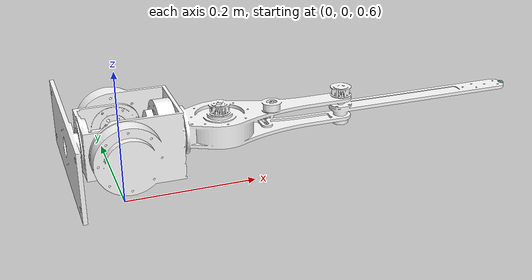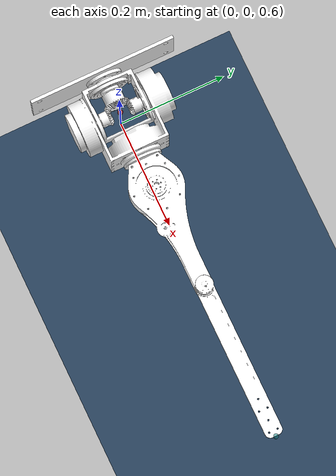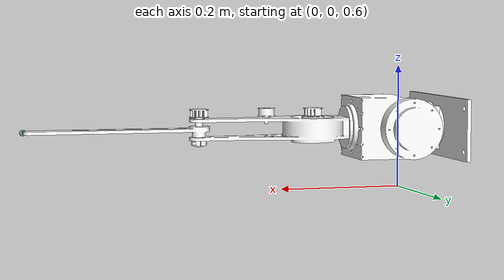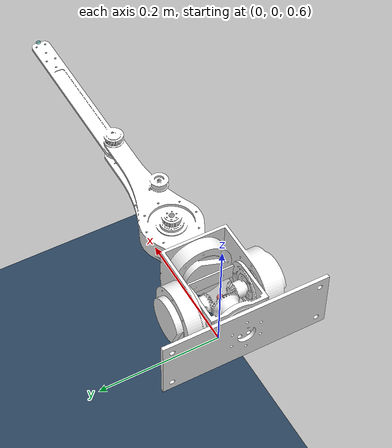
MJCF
<mujoco model="arm_scene">
  <include file="arm.xml"/>

  <visual>
    <quality shadowsize="0" offsamples="0" numslices="14" numstacks="8" numquads="4"/>
    <!--defalt quality shadowsize="4096" offsamples="4" numslices="28" numstacks="16" numquads="4" -->
  </visual>

  <asset>
    <texture type="skybox" builtin="gradient" rgb1="0.3 0.5 0.7" rgb2="0 0 0" width="512" height="3072"/>
    <texture type="2d" name="groundplane" builtin="checker" mark="edge" rgb1="0.2 0.3 0.4" rgb2="0.1 0.2 0.3"
      markrgb="0.8 0.8 0.8" width="300" height="300"/>
    <material name="groundplane" texture="groundplane" texuniform="true" texrepeat="5 5" reflectance="0.2"/>
  </asset>

  <worldbody>
    <light directional="true" pos="0 0 1" dir="0 0 -1"/>
    <geom name="floor" pos="0 0 0" size="3 3 3" type="plane" material="groundplane"/>
  </worldbody>
</mujoco>

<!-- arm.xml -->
<mujoco model="arm">
  <compiler angle="degree" meshdir="meshes" autolimits="true">
    <lengthrange timestep="0.033"/>
  </compiler>
  <!--option integrator="RK4"/-->

  <asset>
    <!-- robot mesh -->
    <mesh file="BaseLink.stl"/>
    <mesh file="SholderLink1.stl"/>
    <mesh file="SholderLink2.stl"/>
    <mesh file="UpperArmLink.stl"/>
    <mesh file="ForeArmLink.stl"/>
    <!-- material -->
    <material name="base_material" rgba="1 1 1 1"/>
    <material name="sholder1_material" rgba="1 1 1 1"/>
    <material name="sholder2_material" rgba="1 1 1 1"/>
    <material name="upper_arm_material" rgba="1 1 1 1"/>
    <material name="fore_arm_material" rgba="1 1 1 1"/>
  </asset>

  <default>
  </default>

  <worldbody>
    <!-- robot body description -->
    <body name="origin" pos="0 0 0.7">
      <geom type="sphere" size="0.005" rgba="1 0 0 0.5"/>
    </body>
    <body name="base" pos="0 0 0" euler="0 0 90"> <!-- 長手方向をx軸にするため回転 -->
      <body name="base_link" pos="0 0.069 0.7">
        <inertial pos="0.000008 -0.006193 -0.000016" euler="0 0 0" mass="1.838188" diaginertia="0.001648 0.008801 0.008173"/>
        <geom mesh="BaseLink" type="mesh" pos="0 0 0" contype="0" conaffinity="0" group="2" material="base_material"/>
        <body name="sholder_link_1" pos="0 -0.014 0">
          <geom mesh="SholderLink1" type="mesh" pos="0 0 0" contype="0" conaffinity="0" group="2" material="sholder1_material"/>
          <inertial pos="-0.000036 0.037788 0" mass="0.340914" diaginertia="0.0004742 0.0006607 0.0008554"/>
          <joint name="sholder_joint_1" pos="0 -0.055 0" axis="0 -1 0" armature="0.0003642"/>
          <body name="sholder_link_2" pos="0 -0.131 0">
            <geom mesh="SholderLink2" type="mesh" pos="0 0 0" contype="0" conaffinity="0" group="2" material="sholder2_material"/>
            <inertial pos="0.000025 0.052487 -0.000019" mass="2.183843" diaginertia="0.004049 0.007499 0.009236"/>
            <joint name="sholder_joint_2" pos="0 0.076 0" axis="1 0 0" armature="0.0003642" ref="-90"/>
            <body name="upper_arm_link" pos="0 -0.0115 0">
              <geom mesh="UpperArmLink" type="mesh" pos="0 0 0" contype="0" conaffinity="0" group="2" material="upper_arm_material"/>
              <inertial pos="-0.00076 -0.07145 0.000014" mass="0.836573" diaginertia="0.002496 0.0005635 0.002764"/>
              <joint name="sholder_joint_3" pos="0 0 0" axis="0 -1 0" armature="0.0003642"/>
              <body name="fore_arm_link" pos="0 -0.2505 0">
                <geom mesh="ForeArmLink" type="mesh" pos="0 0 0" contype="0" conaffinity="0" group="2" material="fore_arm_material"/>
                <inertial pos="0.000012 -0.076122 0.001822" mass="0.204549" diaginertia="0.001890 0.00004473 0.001872"/>
                <joint name="elbow_joint" pos="0 0 0" axis="0 0 1" armature="0.0003642"/>
                <site name="tip" pos="0 -0.284 0" rgba="0.0 0.5 0.5 0.5"/>
              </body>
            </body>
          </body>
        </body>
      </body>
    </body>
  </worldbody>

  <actuator>
    <general name="actuator1" joint="sholder_joint_1" ctrlrange="-20 20" dyntype="none" dynprm="1 0 0" gaintype="fixed" gainprm="60" biastype="affine" biasprm="0 -60 -1" forcerange="-24 24"/>
    <general name="actuator2" joint="sholder_joint_2" ctrlrange="-20 20" dyntype="none" dynprm="1 0 0" gaintype="fixed" gainprm="60" biastype="affine" biasprm="0 -60 -1" forcerange="-24 24"/>
    <general name="actuator3" joint="sholder_joint_3" ctrlrange="-20 20" dyntype="none" dynprm="1 0 0" gaintype="fixed" gainprm="30" biastype="affine" biasprm="0 -30 -0.5" forcerange="-12 12"/>
    <general name="actuator4" joint="elbow_joint" ctrlrange="-20 20" dyntype="none" dynprm="1 0 0" gaintype="fixed" gainprm="30" biastype="affine" biasprm="0 -30 -0.5" forcerange="-12 12"/>
  </actuator>

  <keyframe>
    <key name="home" qpos="0 -0.5235987755982989 0 -1.0471975511965976" ctrl="0 0 0 0"/>
  </keyframe>
</mujoco>
